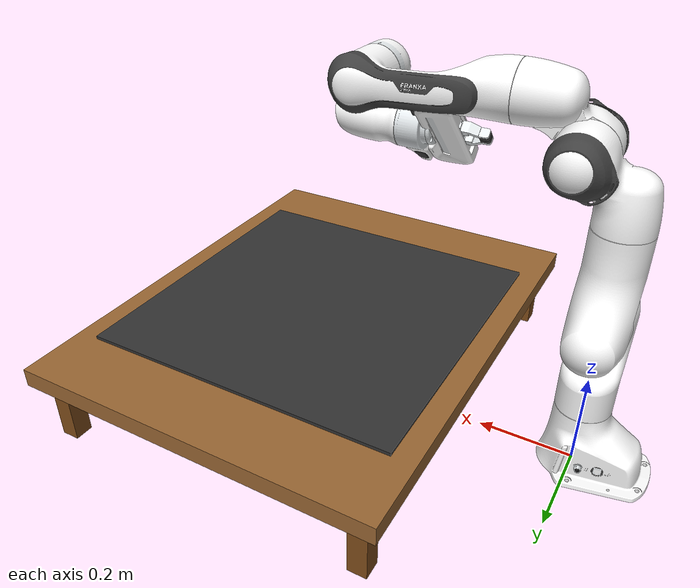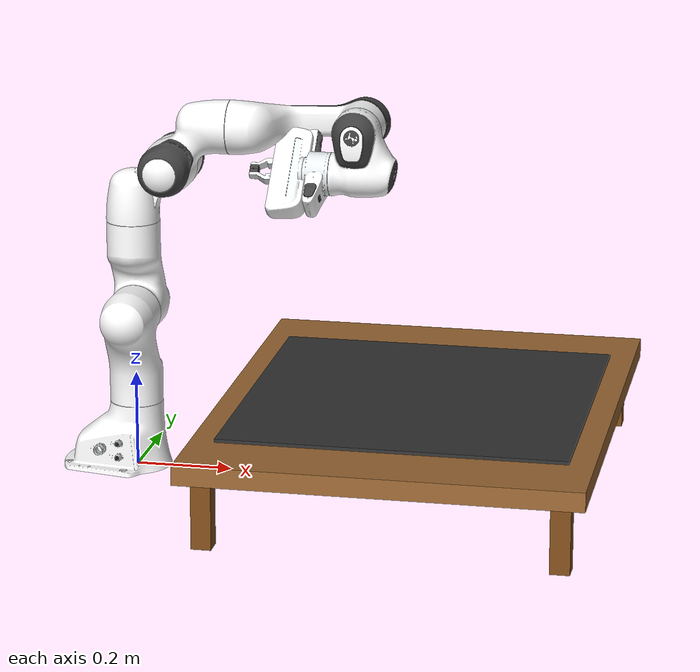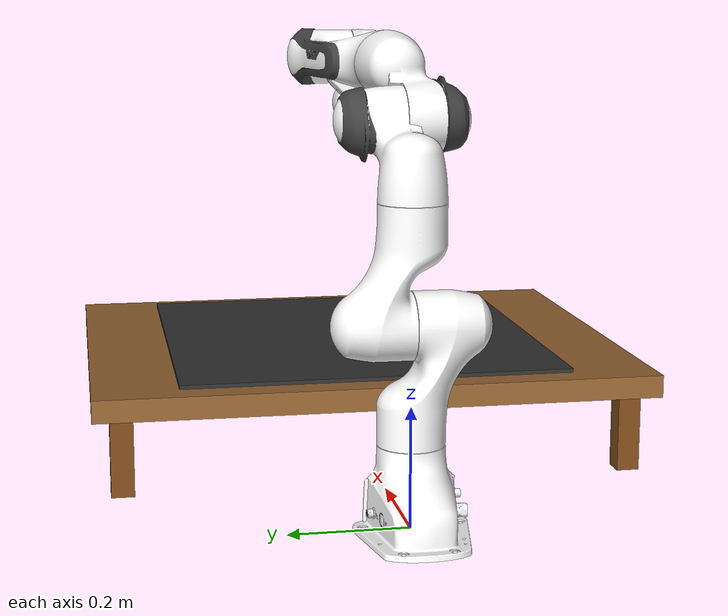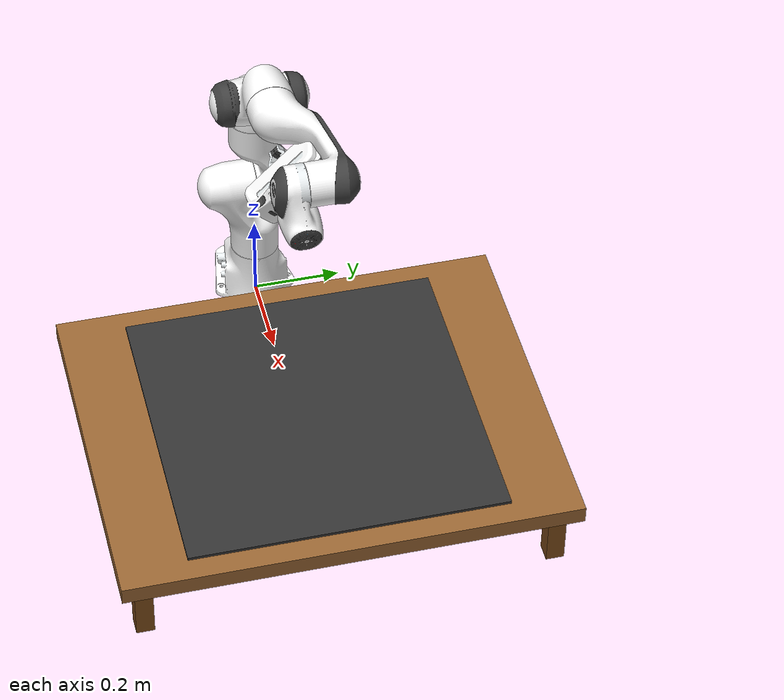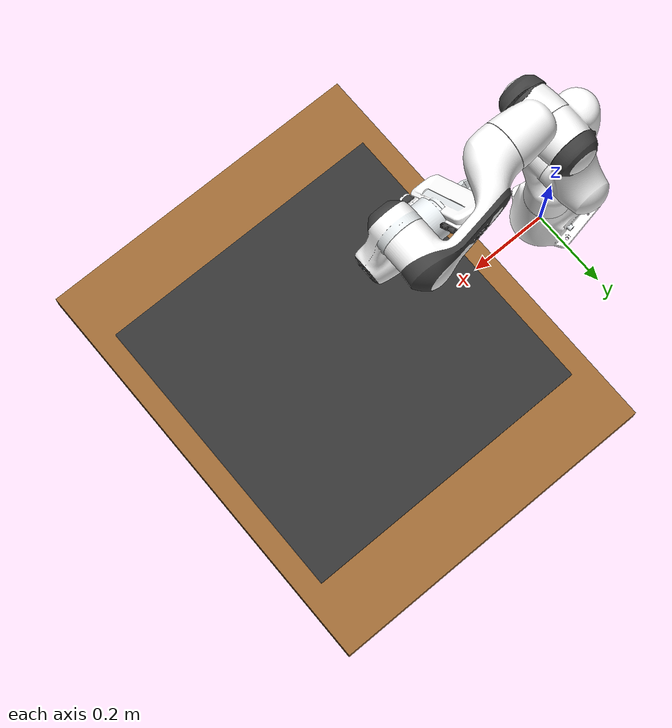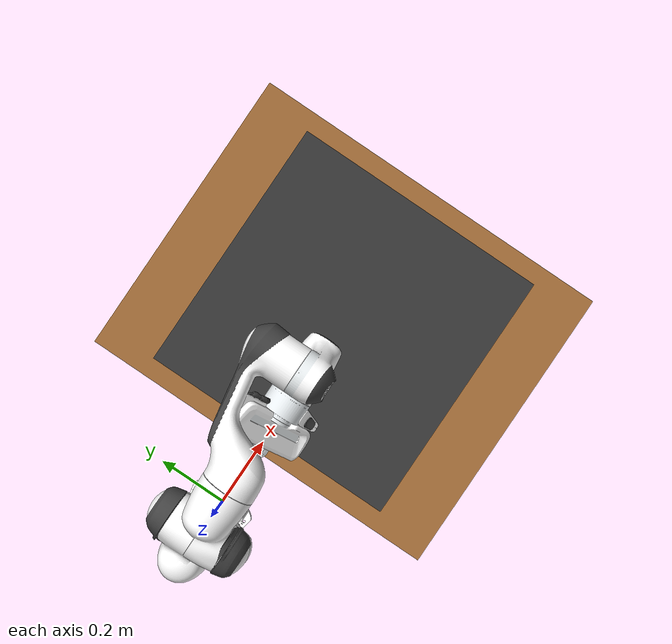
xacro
<?xml version="1.0"?>
<!-- URDF for Franka Emika Panda -->
<robot xmlns:xacro="http://wiki.ros.org/xacro" name="$(arg name)">

  <!-- Imported elements -->
  <xacro:include filename="$(find panda_description)/urdf/panda_arm.xacro"/>
  <xacro:include filename="$(find panda_description)/urdf/panda_gripper.xacro"/>
  <xacro:include filename="$(find panda_description)/urdf/panda_utils.xacro"/>
  <xacro:include filename="$(find panda_description)/urdf/panda.gazebo"/>

  <!-- Parameters -->
  <!-- Name of the robot (mandatory) -->
  <xacro:arg name="name" default="panda"/>
  <!-- Prefix for all entities -->
  <xacro:arg name="prefix" default="$(arg name)_"/>
  <!-- Origin of the arm in the world -->
  <xacro:arg name="origin_xyz" default="0 0 0"/>
  <xacro:arg name="origin_rpy" default="0 0 0"/>

  <!-- Flag to enable default gripper -->
  <xacro:arg name="gripper" default="true" />

  <!-- Flag to enable collision geometry for manipulator's arm -->
  <xacro:arg name="collision_arm" default="true"/>
  <!-- Flag to enable collision geometry for manipulator's gripper (hand and fingers) -->
  <xacro:arg name="collision_gripper" default="true"/>

  <!-- Flag to enable safety limits controllers on manipulator joints -->
  <xacro:arg name="safety_limits" default="false"/>
  <!-- Lower and upper margin for position limits of all safety controllers -->
  <xacro:arg name="safety_position_margin" default="0.17453293"/>
  <!-- Parametric k-position factor of all safety controllers -->
  <xacro:arg name="safety_k_position" default="100.0"/>
  <!-- Parametric k-velocity factor of all safety controllers -->
  <xacro:arg name="safety_k_velocity" default="40.0"/>

  <!-- Flag to enable ros2 controllers for manipulator -->
  <xacro:arg name="ros2_control" default="true"/>
  <!-- The ros2_control plugin that should be loaded for the manipulator ('fake', 'gz', 'real' or custom) -->
  <xacro:arg name="ros2_control_plugin" default="gz"/>
  <!-- The output control command interface provided by ros2_control ('position', 'velocity', 'effort' or certain combinations 'position,velocity') -->
  <xacro:arg name="ros2_control_command_interface" default="effort"/>
  <!-- The filepath to parameters of ROS 2 controllers -->
  <xacro:arg name="ros2_controller_parameters" default="$(find panda_moveit_config)/config/controllers_$(arg ros2_control_command_interface).yaml"/>

  <!-- Flag to preserve fixed joints and prevent lumping when generating SDF for Gazebo -->
  <xacro:arg name="gazebo_preserve_fixed_joint" default="false"/>

  <!-- Properties -->
  <!-- Prefixes -->
  <xacro:property name="prefix_arm" value="$(arg prefix)"/>
  <xacro:property name="prefix_gripper" value="$(arg prefix)"/>

  <!-- Origin of arm in the world -->
  <xacro:property name="world_name" value="world"/>
  <xacro:property name="origin_xyz" value="$(arg origin_xyz)"/>
  <xacro:property name="origin_rpy" value="$(arg origin_rpy)"/>

  <!-- Offset of gripper with respect to wrist flange -->
  <xacro:property name="gripper_offset_xyz" value="0 0 0"/>
  <xacro:property name="gripper_offset_rpy" value="0 0 0"/>

  <!-- Robot -->
  <!-- Dummy world link that the robot is fixed to -->
  <xacro:panda_dummy_link
    link_name="${world_name}"
    gazebo_preserve_fixed_joint="$(arg gazebo_preserve_fixed_joint)"
  />

  <!-- Arm -->
  <xacro:panda_arm
    base_parent="world"
    prefix="${prefix_arm}"
    origin_xyz="${origin_xyz}"
    origin_rpy="${origin_rpy}"
    collision="$(arg collision_arm)"
    safety_limits="$(arg safety_limits)"
    safety_position_margin="$(arg safety_position_margin)"
    safety_k_position="$(arg safety_k_position)"
    safety_k_velocity="$(arg safety_k_velocity)"
    ros2_control="$(arg ros2_control)"
    ros2_control_plugin="$(arg ros2_control_plugin)"
    ros2_control_command_interface="$(arg ros2_control_command_interface)"
    gazebo_preserve_fixed_joint="$(arg gazebo_preserve_fixed_joint)"
  />

  <!-- Gripper -->
  <xacro:if value="$(arg gripper)">
    <xacro:panda_gripper
      wrist_flange="${prefix_arm}${wrist_flange_name}"
      prefix="${prefix_gripper}"
      origin_xyz="${gripper_offset_xyz}"
      origin_rpy="${gripper_offset_rpy}"
      collision="$(arg collision_gripper)"
      ros2_control="$(arg ros2_control)"
      ros2_control_plugin="$(arg ros2_control_plugin)"
      ros2_control_command_interface="$(arg ros2_control_command_interface)"
      gazebo_preserve_fixed_joint="$(arg gazebo_preserve_fixed_joint)"
    />
  </xacro:if>

  <!-- ===== Static environment for open-loop chess ===== -->
  <!-- Matches panda_description/worlds/tabletop_chess.sdf exactly -->
  <link name="table_link">
    <!-- Table top -->
        <visual>
      <origin xyz="0 0 0.16" rpy="0 0 0"/>
      <geometry>
        <box size="0.8 1.0 0.04"/>
      </geometry>
      <material name="table_top_mat">
        <color rgba="0.6 0.4 0.2 1.0"/>
      </material>
    </visual>
    <collision>
      <origin xyz="0 0 0.16" rpy="0 0 0"/>
      <geometry>
        <box size="0.8 1.0 0.04"/>
      </geometry>
    </collision>

    <!-- Leg 1 -->
    <visual>
      <origin xyz="0.35 0.45 0.07" rpy="0 0 0"/>
      <geometry>
        <box size="0.04 0.04 0.14"/>
      </geometry>
      <material name="table_leg_mat">
        <color rgba="0.5 0.3 0.1 1.0"/>
      </material>
    </visual>
    <collision>
      <origin xyz="0.35 0.45 0.07" rpy="0 0 0"/>
      <geometry>
        <box size="0.04 0.04 0.14"/>
      </geometry>
    </collision>

    <!-- Leg 2 -->
    <visual>
      <origin xyz="0.35 -0.45 0.07" rpy="0 0 0"/>
      <geometry>
        <box size="0.04 0.04 0.14"/>
      </geometry>
      <material name="table_leg_mat_2">
        <color rgba="0.5 0.3 0.1 1.0"/>
      </material>
    </visual>
    <collision>
      <origin xyz="0.35 -0.45 0.07" rpy="0 0 0"/>
      <geometry>
        <box size="0.04 0.04 0.14"/>
      </geometry>
    </collision>

    <!-- Leg 3 -->
    <visual>
      <origin xyz="-0.35 0.45 0.07" rpy="0 0 0"/>
      <geometry>
        <box size="0.04 0.04 0.14"/>
      </geometry>
      <material name="table_leg_mat_3">
        <color rgba="0.5 0.3 0.1 1.0"/>
      </material>
    </visual>
    <collision>
      <origin xyz="-0.35 0.45 0.07" rpy="0 0 0"/>
      <geometry>
        <box size="0.04 0.04 0.14"/>
      </geometry>
    </collision>

    <!-- Leg 4 -->
    <visual>
      <origin xyz="-0.35 -0.45 0.07" rpy="0 0 0"/>
      <geometry>
        <box size="0.04 0.04 0.14"/>
      </geometry>
      <material name="table_leg_mat_4">
        <color rgba="0.5 0.3 0.1 1.0"/>
      </material>
    </visual>
    <collision>
      <origin xyz="-0.35 -0.45 0.07" rpy="0 0 0"/>
      <geometry>
        <box size="0.04 0.04 0.14"/>
      </geometry>
    </collision>
    </link>

    <joint name="world_to_table_joint" type="fixed">
      <parent link="world"/>
      <child link="table_link"/>
      <origin xyz="0.6 0 0" rpy="0 0 0"/>
    </joint>

    <link name="chessboard_link">
    <visual>
      <origin xyz="0 0 0" rpy="0 0 0"/>
      <geometry>
        <box size="0.70 0.70 0.01"/>
      </geometry>
      <material name="chessboard_mat">
        <color rgba="0.2 0.2 0.2 1.0"/>
      </material>
    </visual>
    <collision>
      <origin xyz="0 0 0" rpy="0 0 0"/>
      <geometry>
        <box size="0.70 0.70 0.01"/>
      </geometry>
    </collision>
    </link>

    <joint name="table_to_chessboard_joint" type="fixed">
      <parent link="table_link"/>
      <child link="chessboard_link"/>
      <origin xyz="0 0 0.182" rpy="0 0 1.5708"/>
    </joint>

  <!-- Gazebo - ROS 2 control -->
  <xacro:if value="$(arg ros2_control)">
    <xacro:if value="${'gz' in '$(arg ros2_control_plugin)'}">
      <xacro:gz_ros2_control controller_parameters="$(arg ros2_controller_parameters)"/>
    </xacro:if>
  </xacro:if>

</robot>

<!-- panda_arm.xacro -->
<!-- Xacro for Franka Emika Panda arm -->
<robot xmlns:xacro="http://www.ros.org/wiki/xacro">

  <!-- Imported elements -->
  <xacro:include filename="$(find panda_description)/urdf/panda_utils.xacro"/>
  <xacro:include filename="$(find panda_description)/urdf/panda.ros2_control"/>

  <!-- Properties -->
  <xacro:property name="joint_base_name" value="joint_base"/>
  <xacro:property name="joint_base_type" value="fixed"/>
  <xacro:property name="link0_name" value="link0"/>
  <xacro:property name="link0_mu" value="0.85"/>

  <xacro:property name="joint1_name" value="joint1"/>
  <xacro:property name="joint1_type" value="revolute"/>
  <xacro:property name="joint1_origin_xyz" value="0 0 0.333"/>
  <xacro:property name="joint1_origin_rpy" value="0 0 0"/>
  <xacro:property name="joint1_axis_xyz" value="0 0 1"/>
  <xacro:property name="joint1_lower_limit" value="${-166*pi/180}"/>
  <xacro:property name="joint1_upper_limit" value="${166*pi/180}"/>
  <xacro:property name="joint1_velocity_limit" value="${150*pi/180}"/>
  <xacro:property name="joint1_torque_limit" value="87"/>
  <xacro:property name="joint1_damping" value="21.75"/>
  <xacro:property name="joint1_friction" value="3.48"/>
  <xacro:property name="link1_name" value="link1"/>
  <xacro:property name="link1_mu" value="0.85"/>

  <xacro:property name="joint2_name" value="joint2"/>
  <xacro:property name="joint2_type" value="revolute"/>
  <xacro:property name="joint2_origin_xyz" value="0 0 0"/>
  <xacro:property name="joint2_origin_rpy" value="${-pi/2} 0 0"/>
  <xacro:property name="joint2_axis_xyz" value="0 0 1"/>
  <xacro:property name="joint2_lower_limit" value="${-101*pi/180}"/>
  <xacro:property name="joint2_upper_limit" value="${101*pi/180}"/>
  <xacro:property name="joint2_velocity_limit" value="${150*pi/180}"/>
  <xacro:property name="joint2_torque_limit" value="87"/>
  <xacro:property name="joint2_damping" value="21.75"/>
  <xacro:property name="joint2_friction" value="3.48"/>
  <xacro:property name="link2_name" value="link2"/>
  <xacro:property name="link2_mu" value="0.85"/>

  <xacro:property name="joint3_name" value="joint3"/>
  <xacro:property name="joint3_type" value="revolute"/>
  <xacro:property name="joint3_origin_xyz" value="0 -0.316 0"/>
  <xacro:property name="joint3_origin_rpy" value="${pi/2} 0 0"/>
  <xacro:property name="joint3_axis_xyz" value="0 0 1"/>
  <xacro:property name="joint3_lower_limit" value="${-166*pi/180}"/>
  <xacro:property name="joint3_upper_limit" value="${166*pi/180}"/>
  <xacro:property name="joint3_velocity_limit" value="${150*pi/180}"/>
  <xacro:property name="joint3_torque_limit" value="87"/>
  <xacro:property name="joint3_damping" value="21.75"/>
  <xacro:property name="joint3_friction" value="3.48"/>
  <xacro:property name="link3_name" value="link3"/>
  <xacro:property name="link3_mu" value="0.85"/>

  <xacro:property name="joint4_name" value="joint4"/>
  <xacro:property name="joint4_type" value="revolute"/>
  <xacro:property name="joint4_origin_xyz" value="0.0825 0 0"/>
  <xacro:property name="joint4_origin_rpy" value="${pi/2} 0 0"/>
  <xacro:property name="joint4_axis_xyz" value="0 0 1"/>
  <xacro:property name="joint4_lower_limit" value="${-176/180*pi}"/>
  <xacro:property name="joint4_upper_limit" value="${-4/180*pi}"/>
  <xacro:property name="joint4_velocity_limit" value="${150*pi/180}"/>
  <xacro:property name="joint4_torque_limit" value="87"/>
  <xacro:property name="joint4_damping" value="21.75"/>
  <xacro:property name="joint4_friction" value="3.48"/>
  <xacro:property name="link4_name" value="link4"/>
  <xacro:property name="link4_mu" value="0.85"/>

  <xacro:property name="joint5_name" value="joint5"/>
  <xacro:property name="joint5_type" value="revolute"/>
  <xacro:property name="joint5_origin_xyz" value="-0.0825 0.384 0"/>
  <xacro:property name="joint5_origin_rpy" value="${-pi/2} 0 0"/>
  <xacro:property name="joint5_axis_xyz" value="0 0 1"/>
  <xacro:property name="joint5_lower_limit" value="${-166*pi/180}"/>
  <xacro:property name="joint5_upper_limit" value="${166*pi/180}"/>
  <xacro:property name="joint5_velocity_limit" value="${pi}"/>
  <xacro:property name="joint5_torque_limit" value="12"/>
  <xacro:property name="joint5_damping" value="3.0"/>
  <xacro:property name="joint5_friction" value="0.48"/>
  <xacro:property name="link5_name" value="link5"/>
  <xacro:property name="link5_mu" value="0.85"/>

  <xacro:property name="joint6_name" value="joint6"/>
  <xacro:property name="joint6_type" value="revolute"/>
  <xacro:property name="joint6_origin_xyz" value="0 0 0"/>
  <xacro:property name="joint6_origin_rpy" value="${pi/2} 0 0"/>
  <xacro:property name="joint6_axis_xyz" value="0 0 1"/>
  <xacro:property name="joint6_lower_limit" value="${-1/180*pi}"/>
  <xacro:property name="joint6_upper_limit" value="${215/180*pi}"/>
  <xacro:property name="joint6_velocity_limit" value="${pi}"/>
  <xacro:property name="joint6_torque_limit" value="12"/>
  <xacro:property name="joint6_damping" value="3.0"/>
  <xacro:property name="joint6_friction" value="0.48"/>
  <xacro:property name="link6_name" value="link6"/>
  <xacro:property name="link6_mu" value="0.85"/>

  <xacro:property name="joint7_name" value="joint7"/>
  <xacro:property name="joint7_type" value="revolute"/>
  <xacro:property name="joint7_origin_xyz" value="0.088 0 0"/>
  <xacro:property name="joint7_origin_rpy" value="${pi/2} 0 0"/>
  <xacro:property name="joint7_axis_xyz" value="0 0 1"/>
  <xacro:property name="joint7_lower_limit" value="${-166*pi/180}"/>
  <xacro:property name="joint7_upper_limit" value="${166*pi/180}"/>
  <xacro:property name="joint7_velocity_limit" value="${pi}"/>
  <xacro:property name="joint7_torque_limit" value="12"/>
  <xacro:property name="joint7_damping" value="3.0"/>
  <xacro:property name="joint7_friction" value="0.48"/>
  <xacro:property name="link7_name" value="link7"/>
  <xacro:property name="link7_mu" value="0.85"/>

  <xacro:property name="wrist_flange_name" value="link8"/>
  <xacro:property name="wrist_flange_origin_xyz" value="0 0 0.107"/>
  <xacro:property name="wrist_flange_origin_rpy" value="0 0 ${-pi/4}"/>

  <!-- Macro -->
  <xacro:property name="default_origin_xyz" value="0 0 0"/>
  <xacro:property name="default_origin_rpy" value="0 0 0"/>
  <xacro:macro name="panda_arm" params="
    base_parent
    prefix:=panda_
    origin_xyz:=${default_origin_xyz}
    origin_rpy:=${default_origin_rpy}
    collision:=true
    safety_limits:=false
    safety_position_margin:=${1*pi/180}
    safety_k_position:=100.0
    safety_k_velocity:=40.0
    ros2_control:=true
    ros2_control_plugin:=fake
    ros2_control_command_interface:=effort
    gazebo_preserve_fixed_joint:=false
  ">
    <!-- Base -->
    <xacro:panda_joint
    parent="${base_parent}"
    child="${prefix}${link0_name}"
    joint_name="${prefix}${joint_base_name}"
    joint_type="${joint_base_type}"
    joint_origin_xyz="${origin_xyz}"
    joint_origin_rpy="${origin_rpy}"
    gazebo_preserve_fixed_joint="${gazebo_preserve_fixed_joint}"
    />
    <xacro:panda_link
    link_name="${prefix}${link0_name}"
    mesh="${link0_mesh}"
    collision="${collision}"
    mu="${link0_mu}"
    />

    <xacro:panda_joint
    parent="${prefix}${link0_name}"
    child="${prefix}${link1_name}"
    joint_name="${prefix}${joint1_name}"
    joint_type="${joint1_type}"
    joint_origin_xyz="${joint1_origin_xyz}"
    joint_origin_rpy="${joint1_origin_rpy}"
    joint_axis_xyz="${joint1_axis_xyz}"
    joint_lower_limit="${joint1_lower_limit}"
    joint_upper_limit="${joint1_upper_limit}"
    joint_velocity_limit="${joint1_velocity_limit}"
    joint_torque_limit="${joint1_torque_limit}"
    joint_damping="${joint1_damping}"
    joint_friction="${joint1_friction}"
    safety_limits="${safety_limits}"
    safety_position_margin="${safety_position_margin}"
    safety_k_position="${safety_k_position}"
    safety_k_velocity="${safety_k_velocity}"
    gazebo_preserve_fixed_joint="${gazebo_preserve_fixed_joint}"
    />
    <xacro:panda_link
    link_name="${prefix}${link1_name}"
    mesh="${link1_mesh}"
    collision="${collision}"
    mu="${link1_mu}"
    />

    <xacro:panda_joint
    parent="${prefix}${link1_name}"
    child="${prefix}${link2_name}"
    joint_name="${prefix}${joint2_name}"
    joint_type="${joint2_type}"
    joint_origin_xyz="${joint2_origin_xyz}"
    joint_origin_rpy="${joint2_origin_rpy}"
    joint_axis_xyz="${joint2_axis_xyz}"
    joint_lower_limit="${joint2_lower_limit}"
    joint_upper_limit="${joint2_upper_limit}"
    joint_velocity_limit="${joint2_velocity_limit}"
    joint_torque_limit="${joint2_torque_limit}"
    joint_damping="${joint2_damping}"
    joint_friction="${joint2_friction}"
    safety_limits="${safety_limits}"
    safety_position_margin="${safety_position_margin}"
    safety_k_position="${safety_k_position}"
    safety_k_velocity="${safety_k_velocity}"
    gazebo_preserve_fixed_joint="${gazebo_preserve_fixed_joint}"
    />
    <xacro:panda_link
    link_name="${prefix}${link2_name}"
    mesh="${link2_mesh}"
    collision="${collision}"
    mu="${link2_mu}"
    />

    <xacro:panda_joint
    parent="${prefix}${link2_name}"
    child="${prefix}${link3_name}"
    joint_name="${prefix}${joint3_name}"
    joint_type="${joint3_type}"
    joint_origin_xyz="${joint3_origin_xyz}"
    joint_origin_rpy="${joint3_origin_rpy}"
    joint_axis_xyz="${joint3_axis_xyz}"
    joint_lower_limit="${joint3_lower_limit}"
    joint_upper_limit="${joint3_upper_limit}"
    joint_velocity_limit="${joint3_velocity_limit}"
    joint_torque_limit="${joint3_torque_limit}"
    joint_damping="${joint3_damping}"
    joint_friction="${joint3_friction}"
    safety_limits="${safety_limits}"
    safety_position_margin="${safety_position_margin}"
    safety_k_position="${safety_k_position}"
    safety_k_velocity="${safety_k_velocity}"
    gazebo_preserve_fixed_joint="${gazebo_preserve_fixed_joint}"
    />
    <xacro:panda_link
    link_name="${prefix}${link3_name}"
    mesh="${link3_mesh}"
    collision="${collision}"
    mu="${link3_mu}"
    />

    <xacro:panda_joint
    parent="${prefix}${link3_name}"
    child="${prefix}${link4_name}"
    joint_name="${prefix}${joint4_name}"
    joint_type="${joint4_type}"
    joint_origin_xyz="${joint4_origin_xyz}"
    joint_origin_rpy="${joint4_origin_rpy}"
    joint_axis_xyz="${joint4_axis_xyz}"
    joint_lower_limit="${joint4_lower_limit}"
    joint_upper_limit="${joint4_upper_limit}"
    joint_velocity_limit="${joint4_velocity_limit}"
    joint_torque_limit="${joint4_torque_limit}"
    joint_damping="${joint4_damping}"
    joint_friction="${joint4_friction}"
    safety_limits="${safety_limits}"
    safety_position_margin="${safety_position_margin}"
    safety_k_position="${safety_k_position}"
    safety_k_velocity="${safety_k_velocity}"
    gazebo_preserve_fixed_joint="${gazebo_preserve_fixed_joint}"
    />
    <xacro:panda_link
    link_name="${prefix}${link4_name}"
    mesh="${link4_mesh}"
    collision="${collision}"
    mu="${link4_mu}"
    />

    <xacro:panda_joint
    parent="${prefix}${link4_name}"
    child="${prefix}${link5_name}"
    joint_name="${prefix}${joint5_name}"
    joint_type="${joint5_type}"
    joint_origin_xyz="${joint5_origin_xyz}"
    joint_origin_rpy="${joint5_origin_rpy}"
    joint_axis_xyz="${joint5_axis_xyz}"
    joint_lower_limit="${joint5_lower_limit}"
    joint_upper_limit="${joint5_upper_limit}"
    joint_velocity_limit="${joint5_velocity_limit}"
    joint_torque_limit="${joint5_torque_limit}"
    joint_damping="${joint5_damping}"
    joint_friction="${joint5_friction}"
    safety_limits="${safety_limits}"
    safety_position_margin="${safety_position_margin}"
    safety_k_position="${safety_k_position}"
    safety_k_velocity="${safety_k_velocity}"
    gazebo_preserve_fixed_joint="${gazebo_preserve_fixed_joint}"
    />
    <xacro:panda_link
    link_name="${prefix}${link5_name}"
    mesh="${link5_mesh}"
    collision="${collision}"
    mu="${link5_mu}"
    />

    <xacro:panda_joint
    parent="${prefix}${link5_name}"
    child="${prefix}${link6_name}"
    joint_name="${prefix}${joint6_name}"
    joint_type="${joint6_type}"
    joint_origin_xyz="${joint6_origin_xyz}"
    joint_origin_rpy="${joint6_origin_rpy}"
    joint_axis_xyz="${joint6_axis_xyz}"
    joint_lower_limit="${joint6_lower_limit}"
    joint_upper_limit="${joint6_upper_limit}"
    joint_velocity_limit="${joint6_velocity_limit}"
    joint_torque_limit="${joint6_torque_limit}"
    joint_damping="${joint6_damping}"
    joint_friction="${joint6_friction}"
    safety_limits="${safety_limits}"
    safety_position_margin="${safety_position_margin}"
    safety_k_position="${safety_k_position}"
    safety_k_velocity="${safety_k_velocity}"
    gazebo_preserve_fixed_joint="${gazebo_preserve_fixed_joint}"
    />
    <xacro:panda_link
    link_name="${prefix}${link6_name}"
    mesh="${link6_mesh}"
    collision="${collision}"
    mu="${link6_mu}"
    />

    <xacro:panda_joint
    parent="${prefix}${link6_name}"
    child="${prefix}${link7_name}"
    joint_name="${prefix}${joint7_name}"
    joint_type="${joint7_type}"
    joint_origin_xyz="${joint7_origin_xyz}"
    joint_origin_rpy="${joint7_origin_rpy}"
    joint_axis_xyz="${joint7_axis_xyz}"
    joint_lower_limit="${joint7_lower_limit}"
    joint_upper_limit="${joint7_upper_limit}"
    joint_velocity_limit="${joint7_velocity_limit}"
    joint_torque_limit="${joint7_torque_limit}"
    joint_damping="${joint7_damping}"
    joint_friction="${joint7_friction}"
    safety_limits="${safety_limits}"
    safety_position_margin="${safety_position_margin}"
    safety_k_position="${safety_k_position}"
    safety_k_velocity="${safety_k_velocity}"
    gazebo_preserve_fixed_joint="${gazebo_preserve_fixed_joint}"
    />
    <xacro:panda_link
    link_name="${prefix}${link7_name}"
    mesh="${link7_mesh}"
    collision="${collision}"
    mu="${link7_mu}"
    />

    <!-- Wrist flange -->
    <xacro:panda_virtual_link
    parent="${prefix}${link7_name}"
    link_name="${prefix}${wrist_flange_name}"
    joint_origin_xyz="${wrist_flange_origin_xyz}"
    joint_origin_rpy="${wrist_flange_origin_rpy}"
    gazebo_preserve_fixed_joint="${gazebo_preserve_fixed_joint}"
    />

    <!-- ROS 2 control -->
    <xacro:if value="${ros2_control}">
      <xacro:ros2_control_panda_arm prefix="${prefix}" plugin="${ros2_control_plugin}" command_interface="${ros2_control_command_interface}"/>
    </xacro:if>
  </xacro:macro>

</robot>

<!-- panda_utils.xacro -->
<!-- Macros for general boilerplate -->
<robot xmlns:xacro="http://www.ros.org/wiki/xacro">

  <!-- Imported elements -->
  <xacro:include filename="$(find panda_description)/urdf/panda_inertial.xacro"/>

  <!-- Macro -->
  <xacro:property name="mesh_offset_rpy" value="0 0 0"/>
  <xacro:macro name="panda_link" params="
    link_name
    mesh
    collision:=true
    mu:=1.0
    mesh_offset_rpy:=${mesh_offset_rpy}
    gazebo_self_collide:=false
  ">
    <link name="${link_name}">
      <visual>
        <origin xyz="0 0 0" rpy="${mesh_offset_rpy}"/>
        <geometry>
          <mesh filename="package://panda_description/meshes/visual/${mesh}.dae"/>
        </geometry>
      </visual>

      <xacro:if value="${collision}">
        <collision>
          <origin xyz="0 0 0" rpy="${mesh_offset_rpy}"/>
          <geometry>
            <mesh filename="package://panda_description/meshes/collision/${mesh}.stl"/>
          </geometry>
        </collision>
      </xacro:if>

      <xacro:panda_inertial mesh="${mesh}" mesh_offset_rpy="${mesh_offset_rpy}"/>
    </link>

    <gazebo reference="${link_name}">
      <mu1 value="${mu}"/>
      <mu2 value="${mu}"/>
      <xacro:if value="${gazebo_self_collide}">
        <self_collide>true</self_collide>
      </xacro:if>
    </gazebo>
  </xacro:macro>

  <!-- Macro -->
  <xacro:macro name="panda_joint" params="
    parent
    child
    joint_name
    joint_type
    joint_origin_xyz
    joint_origin_rpy
    joint_axis_xyz:=unset
    joint_lower_limit:=unset
    joint_upper_limit:=unset
    joint_velocity_limit:=unset
    joint_torque_limit:=unset
    joint_damping:=0.0
    joint_friction:=0.0
    mimic_joint:=none
    safety_limits:=false
    safety_position_margin:=0.0
    safety_k_position:=0.0
    safety_k_velocity:=0.0
    gazebo_spring_stiffness:=0.0
    gazebo_spring_reference:=0.0
    gazebo_preserve_fixed_joint:=false
  ">
    <!-- Make sure limits are set for non-fixed joints -->
    <xacro:unless value="${joint_type == 'fixed'}">
      <xacro:if value="${joint_axis_xyz == 'unset'}">
        <xacro:ERROR_joint_axis_xyz_undefined/>
      </xacro:if>
      <xacro:if value="${joint_lower_limit == 'unset'}">
        <xacro:ERROR_joint_lower_limit_undefined/>
      </xacro:if>
      <xacro:if value="${joint_upper_limit == 'unset'}">
        <xacro:ERROR_joint_upper_limit_undefined/>
      </xacro:if>
      <xacro:if value="${joint_velocity_limit == 'unset'}">
        <xacro:ERROR_joint_velocity_limit_undefined/>
      </xacro:if>
      <xacro:if value="${joint_torque_limit == 'unset'}">
        <xacro:ERROR_joint_torque_limit_undefined/>
      </xacro:if>
    </xacro:unless>

    <joint name="${joint_name}" type="${joint_type}">
      <parent link="${parent}"/>
      <child link="${child}"/>
      <origin xyz="${joint_origin_xyz}" rpy="${joint_origin_rpy}"/>
      <xacro:unless value="${joint_type == 'fixed'}">
        <axis xyz="${joint_axis_xyz}"/>
        <xacro:if value="${joint_type == 'continuous'}">
          <limit effort="${joint_torque_limit}" velocity="${joint_velocity_limit}"/>
        </xacro:if>
        <xacro:unless value="${joint_type == 'continuous'}">
          <limit lower="${joint_lower_limit}" upper="${joint_upper_limit}" effort="${joint_torque_limit}" velocity="${joint_velocity_limit}"/>
        </xacro:unless>
        <xacro:if value="${safety_limits}">
          <safety_controller soft_lower_limit="${joint_lower_limit+safety_position_margin}" soft_upper_limit="${joint_upper_limit-safety_position_margin}" k_position="${safety_k_position}" k_velocity="${safety_k_velocity}"/>
        </xacro:if>
        <dynamics damping="${joint_damping}" friction="${joint_friction}"/>
      </xacro:unless>
      <xacro:unless value="${mimic_joint == 'none'}">
        <mimic joint="${mimic_joint}"/>
      </xacro:unless>
    </joint>

    <!-- Transmission for non-fixed joints -->
    <xacro:unless value="${joint_type == 'fixed'}">
      <transmission name="${joint_name}_transmission">
        <type>transmission_interface/SimpleTransmission</type>
        <joint name="${joint_name}">
          <hardwareInterface>hardware_interface/EffortJointInterface</hardwareInterface>
        </joint>
        <actuator name="${joint_name}_actuator">
          <mechanicalReduction>1</mechanicalReduction>
        </actuator>
      </transmission>
    </xacro:unless>

    <!-- Spring stiffness and reference for non-fifex joint -->
    <xacro:unless value="${joint_type == 'fixed'}">
      <gazebo reference="${joint_name}">
        <springStiffness value="${gazebo_spring_stiffness}"/>
        <springReference value="${gazebo_spring_reference}"/>
      </gazebo>
    </xacro:unless>

    <!-- Preserve fixed joint, if desired -->
    <xacro:if value="${joint_type == 'fixed' and gazebo_preserve_fixed_joint}">
      <gazebo reference="${joint_name}">
        <preserveFixedJoint>true</preserveFixedJoint>
        <disableFixedJointLumping>true</disableFixedJointLumping>
      </gazebo>
    </xacro:if>
  </xacro:macro>

  <!-- Macro -->
  <xacro:macro name="panda_virtual_link" params="
    parent
    link_name
    joint_origin_xyz
    joint_origin_rpy
    gazebo_preserve_fixed_joint:=false
  ">
    <xacro:panda_dummy_link
      link_name="${link_name}"
      gazebo_preserve_fixed_joint="${gazebo_preserve_fixed_joint}"
    />

    <joint name="${link_name}_virtual_joint" type="fixed">
      <parent link="${parent}"/>
      <child link="${link_name}"/>
      <origin xyz="${joint_origin_xyz}" rpy="${joint_origin_rpy}"/>
    </joint>
  </xacro:macro>

  <!-- Macro -->
  <xacro:macro name="panda_dummy_link" params="
    link_name
    gazebo_preserve_fixed_joint:=false
  ">
    <link name="${link_name}">
      <xacro:if value="${gazebo_preserve_fixed_joint}">
        <inertial>
          <mass value="1e-5"/>
          <inertia ixx="1e-35" iyy="1e-35" izz="1e-35" ixy="0.0" ixz="0.0" iyz="0.0"/>
        </inertial>
      </xacro:if>
    </link>

    <!-- Preserve fixed joint, if desired -->
    <xacro:if value="${gazebo_preserve_fixed_joint}">
      <gazebo reference="${link_name}_virtual_joint">
        <preserveFixedJoint>true</preserveFixedJoint>
        <disableFixedJointLumping>true</disableFixedJointLumping>
      </gazebo>
    </xacro:if>
  </xacro:macro>

</robot>

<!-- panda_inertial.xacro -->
<!-- Macro for inertial properties of Franka Emika Panda -->
<robot xmlns:xacro="http://www.ros.org/wiki/xacro">

  <!-- Properties -->
  <xacro:property name="link0_mesh" value="link0"/>
  <xacro:property name="link1_mesh" value="link1"/>
  <xacro:property name="link2_mesh" value="link2"/>
  <xacro:property name="link3_mesh" value="link3"/>
  <xacro:property name="link4_mesh" value="link4"/>
  <xacro:property name="link5_mesh" value="link5"/>
  <xacro:property name="link6_mesh" value="link6"/>
  <xacro:property name="link7_mesh" value="link7"/>
  <xacro:property name="hand_mesh" value="hand"/>
  <xacro:property name="finger_mesh" value="finger"/>

  <!-- Macro -->
  <xacro:property name="mesh_offset_rpy" value="0 0 0"/>
  <xacro:macro name="panda_inertial" params="
    mesh
    mesh_offset_rpy:=${mesh_offset_rpy}
  ">
    <xacro:if value="${mesh == link0_mesh}">
      <inertial>
        <origin xyz="-0.025566 -2.87883e-05 0.057332" rpy="${mesh_offset_rpy}"/>
        <mass value="2.814271300104062"/>
        <inertia ixx="0.0075390636364814695" iyy="0.010508017427382959" izz="0.009864933638708275" ixy="-1.5053124574783335e-05" ixz="-0.0012144328835738973" iyz="1.0434803501032979e-05"/>
      </inertial>
    </xacro:if>

    <xacro:if value="${mesh == link1_mesh}">
      <inertial>
        <origin xyz="-3.72212e-09 -0.0324958 -0.0675818" rpy="${mesh_offset_rpy}"/>
        <mass value="2.6433170427227215"/>
        <inertia ixx="0.017405076982879724" iyy="0.015352077935781732" izz="0.005987891663073857" ixy="-8.687986369621078e-09" ixz="-1.6277819062920423e-08" iyz="0.004510855959102245"/>
      </inertial>
    </xacro:if>

    <xacro:if value="${mesh == link2_mesh}">
      <inertial>
        <origin xyz="3.17833e-07 -0.06861 0.0322285" rpy="${mesh_offset_rpy}"/>
        <mass value="2.6652755331661186"/>
        <inertia ixx="0.01778694005635383" iyy="0.006044133867952844" izz="0.01571095500455695" ixy="8.70635625879119e-08" ixz="3.752072058394008e-08" iyz="-0.004599490295490376"/>
      </inertial>
    </xacro:if>

    <xacro:if value="${mesh == link3_mesh}">
      <inertial>
        <origin xyz="0.0469893 0.0316374 -0.031704" rpy="${mesh_offset_rpy}"/>
        <mass value="2.3293714829045733"/>
        <inertia ixx="0.0075496764161139766" iyy="0.009680676080191398" izz="0.007944557422008086" ixy="-0.0024320464513492225" ixz="-0.003250815048103007" iyz="-0.0021316282421730694"/>
      </inertial>
    </xacro:if>

    <xacro:if value="${mesh == link4_mesh}">
      <inertial>
        <origin xyz="-0.0360505 0.0337069 0.0319019" rpy="${mesh_offset_rpy}"/>
        <mass value="2.3104763646281508"/>
        <inertia ixx="0.007764568814864828" iyy="0.008015776929980149" izz="0.009955882308071066" ixy="0.003371475204045935" ixz="-0.002343621113168248" iyz="0.0022917526161470624"/>
      </inertial>
    </xacro:if>

    <xacro:if value="${mesh == link5_mesh}">
      <inertial>
        <origin xyz="-6.12525e-06 0.0610427 -0.104176" rpy="${mesh_offset_rpy}"/>
        <mass value="2.6226426154892004"/>
        <inertia ixx="0.029070538014399377" iyy="0.027638529986528795" izz="0.004251111234400737" ixy="6.208738268725568e-07" ixz="-1.0059151925023392e-05" iyz="-0.007424306477850814"/>
      </inertial>
    </xacro:if>

    <xacro:if value="${mesh == link6_mesh}">
      <inertial>
        <origin xyz="0.051051 0.00910797 0.0106343" rpy="${mesh_offset_rpy}"/>
        <mass value="1.5025804886626795"/>
        <inertia ixx="0.002940555801469018" iyy="0.00392105201248677" izz="0.0054115603870960195" ixy="-0.00042391108351381507" ixz="0.000610007735338717" iyz="0.00012647545430836214"/>
      </inertial>
    </xacro:if>

    <xacro:if value="${mesh == link7_mesh}">
      <inertial>
        <origin xyz="0.0109695 0.0107965 0.0650412" rpy="${mesh_offset_rpy}"/>
        <mass value="0.5237668134788256"/>
        <inertia ixx="0.0008621467959726535" iyy="0.0008613100184801048" izz="0.0006961139396618219" ixy="-0.00011871071570425467" ixz="3.866602604509339e-05" iyz="-9.057841649422724e-05"/>
      </inertial>
    </xacro:if>

    <xacro:if value="${mesh == hand_mesh}">
      <inertial>
        <origin xyz="-6.7624e-06 0.00152435 0.0275912" rpy="${mesh_offset_rpy}"/>
        <mass value="0.14060765127978503"/>
        <inertia ixx="0.0005365450414352072" iyy="7.70511954783727e-05" izz="0.0004938176882694914" ixy="1.7911952957732454e-08" ixz="-2.320071910601251e-08" iyz="4.681149945315967e-08"/>
      </inertial>
    </xacro:if>

    <xacro:if value="${mesh == finger_mesh}">
      <inertial>
        <origin xyz="-6.2561e-06 0.00227781 -0.0277116" rpy="${mesh_offset_rpy}"/>
        <mass value="0.2238453537819424"/>
        <inertia ixx="6.74804167363695e-05" iyy="6.627189221641395e-05" izz="1.550396267804825e-05" ixy="-4.1027443646025676e-09" ixz="1.8693673970152995e-08" iyz="1.1967548474390802e-05"/>
      </inertial>
    </xacro:if>
  </xacro:macro>

</robot>

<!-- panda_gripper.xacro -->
<!-- Xacro for Franka Emika Panda gripper -->
<robot xmlns:xacro="http://www.ros.org/wiki/xacro">

  <!-- Imported elements -->
  <xacro:include filename="$(find panda_description)/urdf/panda_utils.xacro"/>
  <xacro:include filename="$(find panda_description)/urdf/panda.ros2_control"/>

  <!-- Properties -->
  <xacro:property name="joint_wrist_name" value="joint_wrist"/>
  <xacro:property name="joint_wrist_type" value="fixed"/>
  <xacro:property name="hand_name" value="hand"/>
  <xacro:property name="hand_mu" value="0.85"/>

  <xacro:property name="joint_finger1_name" value="finger_joint1"/>
  <xacro:property name="joint_finger1_type" value="prismatic"/>
  <xacro:property name="joint_finger1_origin_xyz" value="0 0 0.0584"/>
  <xacro:property name="joint_finger1_origin_rpy" value="0 0 0"/>
  <xacro:property name="joint_finger1_axis_xyz" value="0 1 0"/>
  <xacro:property name="joint_finger1_lower_limit" value="0"/>
  <xacro:property name="joint_finger1_upper_limit" value="0.04"/>
  <xacro:property name="joint_finger1_velocity_limit" value="0.2"/>
  <xacro:property name="joint_finger1_torque_limit" value="20"/>
  <xacro:property name="joint_finger1_damping" value="3.0"/>
  <xacro:property name="joint_finger1_friction" value="0.4"/>
  <xacro:property name="link_finger1_name" value="leftfinger"/>
  <xacro:property name="link_finger1_mu" value="1.13"/>
  <xacro:property name="link_finger1_mesh_offset" value="0 0 0"/>

  <xacro:property name="joint_finger2_name" value="finger_joint2"/>
  <xacro:property name="joint_finger2_type" value="prismatic"/>
  <xacro:property name="joint_finger2_origin_xyz" value="0 0 0.0584"/>
  <xacro:property name="joint_finger2_origin_rpy" value="0 0 0"/>
  <xacro:property name="joint_finger2_axis_xyz" value="0 -1 0"/>
  <xacro:property name="joint_finger2_lower_limit" value="0"/>
  <xacro:property name="joint_finger2_upper_limit" value="0.04"/>
  <xacro:property name="joint_finger2_velocity_limit" value="0.2"/>
  <xacro:property name="joint_finger2_torque_limit" value="20"/>
  <xacro:property name="joint_finger2_damping" value="3.0"/>
  <xacro:property name="joint_finger2_friction" value="0.4"/>
  <xacro:property name="link_finger2_name" value="rightfinger"/>
  <xacro:property name="link_finger2_mu" value="1.13"/>
  <xacro:property name="link_finger2_mesh_offset" value="0 0 ${pi}"/>

  <xacro:property name="ee_name" value="hand_tcp"/>
  <xacro:property name="ee_origin_xyz" value="0 0 0.1034"/>
  <xacro:property name="ee_origin_rpy" value="0 0 0"/>

  <!-- Macro -->
  <xacro:property name="default_origin_xyz" value="0 0 0"/>
  <xacro:property name="default_origin_rpy" value="0 0 0"/>
  <xacro:macro name="panda_gripper" params="
    wrist_flange
    prefix:=panda_
    origin_xyz:=${default_origin_xyz}
    origin_rpy:=${default_origin_rpy}
    collision:=true
    ros2_control:=true
    ros2_control_plugin:=fake
    ros2_control_command_interface:=effort
    gazebo_preserve_fixed_joint:=false
  ">
    <!-- Wrist -->
    <xacro:panda_joint
    parent="${wrist_flange}"
    child="${prefix}${hand_name}"
    joint_name="${prefix}${joint_wrist_name}"
    joint_type="${joint_wrist_type}"
    joint_origin_xyz="${origin_xyz}"
    joint_origin_rpy="${origin_rpy}"
    gazebo_preserve_fixed_joint="${gazebo_preserve_fixed_joint}"
    />
    <xacro:panda_link
    link_name="${prefix}${hand_name}"
    mesh="${hand_mesh}"
    collision="${collision}"
    mu="${hand_mu}"
    />

    <!-- Finger 1 -->
    <xacro:panda_joint
    parent="${prefix}${hand_name}"
    child="${prefix}${link_finger1_name}"
    joint_name="${prefix}${joint_finger1_name}"
    joint_type="${joint_finger1_type}"
    joint_origin_xyz="${joint_finger1_origin_xyz}"
    joint_origin_rpy="${joint_finger1_origin_rpy}"
    joint_axis_xyz="${joint_finger1_axis_xyz}"
    joint_lower_limit="${joint_finger1_lower_limit}"
    joint_upper_limit="${joint_finger1_upper_limit}"
    joint_velocity_limit="${joint_finger1_velocity_limit}"
    joint_torque_limit="${joint_finger1_torque_limit}"
    joint_damping="${joint_finger1_damping}"
    joint_friction="${joint_finger1_friction}"
    gazebo_preserve_fixed_joint="${gazebo_preserve_fixed_joint}"
    />
    <xacro:panda_link
    link_name="${prefix}${link_finger1_name}"
    mesh="${finger_mesh}"
    collision="${collision}"
    mu="${link_finger1_mu}"
    mesh_offset_rpy="${link_finger1_mesh_offset}"
    />

    <!-- Finger 2 -->
    <xacro:panda_joint
    parent="${prefix}${hand_name}"
    child="${prefix}${link_finger2_name}"
    joint_name="${prefix}${joint_finger2_name}"
    joint_type="${joint_finger2_type}"
    joint_origin_xyz="${joint_finger2_origin_xyz}"
    joint_origin_rpy="${joint_finger2_origin_rpy}"
    joint_axis_xyz="${joint_finger2_axis_xyz}"
    joint_lower_limit="${joint_finger2_lower_limit}"
    joint_upper_limit="${joint_finger2_upper_limit}"
    joint_velocity_limit="${joint_finger2_velocity_limit}"
    joint_torque_limit="${joint_finger2_torque_limit}"
    joint_damping="${joint_finger2_damping}"
    joint_friction="${joint_finger2_friction}"
    gazebo_preserve_fixed_joint="${gazebo_preserve_fixed_joint}"
    />
    <xacro:panda_link
    link_name="${prefix}${link_finger2_name}"
    mesh="${finger_mesh}"
    collision="${collision}"
    mu="${link_finger2_mu}"
    mesh_offset_rpy="${link_finger2_mesh_offset}"
    />

    <!-- End effector -->
    <xacro:panda_virtual_link
    parent="${prefix}${hand_name}"
    link_name="${prefix}${ee_name}"
    joint_origin_xyz="${ee_origin_xyz}"
    joint_origin_rpy="${ee_origin_rpy}"
    gazebo_preserve_fixed_joint="${gazebo_preserve_fixed_joint}"
    />

    <!-- ROS 2 control -->
    <xacro:if value="${ros2_control}">
      <xacro:ros2_control_panda_gripper prefix="${prefix}" plugin="${ros2_control_plugin}" command_interface="${ros2_control_command_interface}"/>
    </xacro:if>
  </xacro:macro>

</robot>
